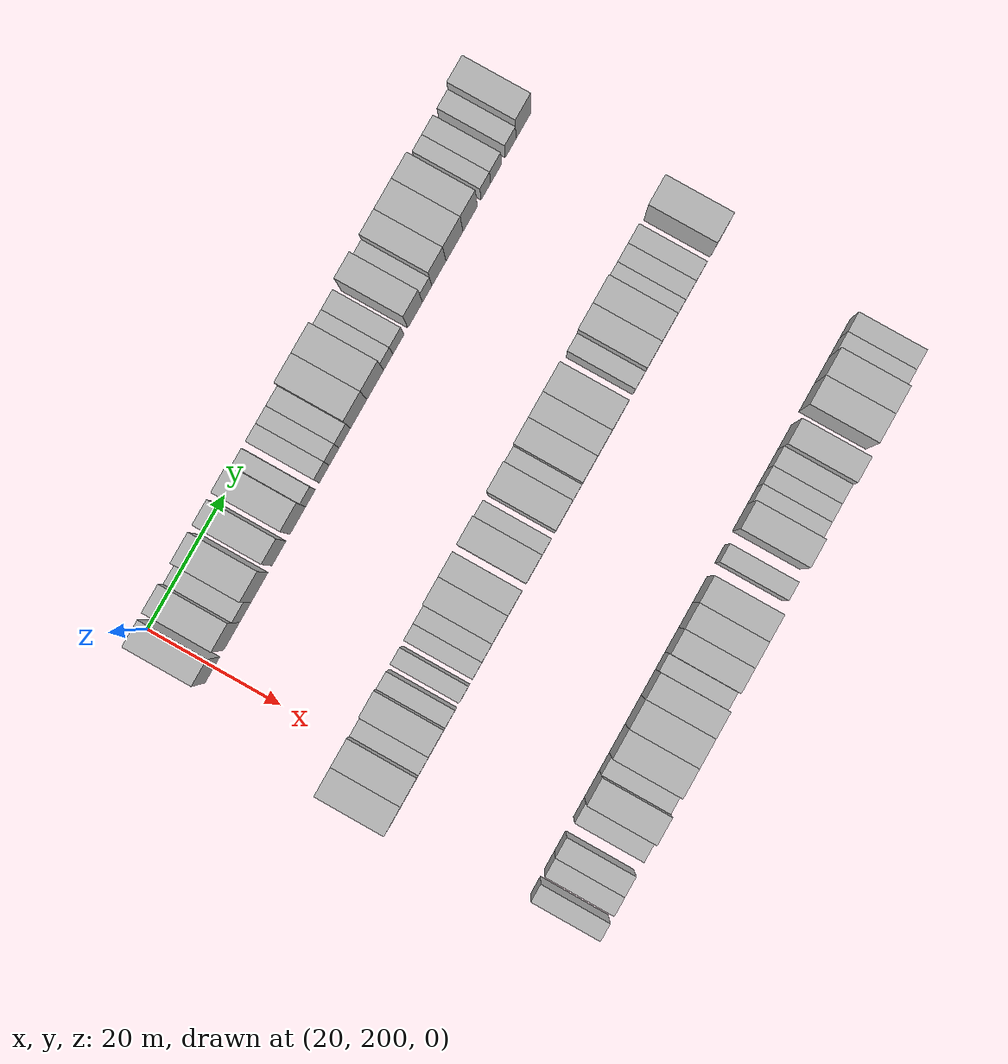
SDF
<sdf version="1.6">
 <world name="default">
  <model name="building_123">
   <static>1</static>
   <pose>25.0000 199.6156 0 0.000000 0.000000 0.000000</pose>
   <link name="link">
    <pose>0 0 4.50 0 0 0</pose>
    <collision name="collision"><geometry><box><size>10.0000 3.8660 9.0000</size></box></geometry></collision>
    <visual name="visual">
     <cast_shadows>0</cast_shadows>
     <geometry><box><size>10.0000 3.8660 9.0000</size></box></geometry>
     <material>
      <script>
       <uri>model://HANNAS_wall/materials/scripts</uri>
       <uri>model://HANNAS_wall/materials/textures</uri>
       <name>vrc/HANNAS_wall</name>
      </script>
     </material>
    </visual>
   </link>
  </model>
  <model name="building_124">
   <static>1</static>
   <pose>25.0000 204.6122 0 0.000000 0.000000 0.000000</pose>
   <link name="link">
    <pose>0 0 4.50 0 0 0</pose>
    <collision name="collision"><geometry><box><size>10.0000 4.1271 9.0000</size></box></geometry></collision>
    <visual name="visual">
     <cast_shadows>0</cast_shadows>
     <geometry><box><size>10.0000 4.1271 9.0000</size></box></geometry>
     <material>
      <script>
       <uri>model://HANNAS_wall/materials/scripts</uri>
       <uri>model://HANNAS_wall/materials/textures</uri>
       <name>vrc/HANNAS_wall</name>
      </script>
     </material>
    </visual>
   </link>
  </model>
  <model name="building_125">
   <static>1</static>
   <pose>25.0000 208.1645 0 0.000000 0.000000 0.000000</pose>
   <link name="link">
    <pose>0 0 3.00 0 0 0</pose>
    <collision name="collision"><geometry><box><size>10.0000 2.9774 6.0000</size></box></geometry></collision>
    <visual name="visual">
     <cast_shadows>0</cast_shadows>
     <geometry><box><size>10.0000 2.9774 6.0000</size></box></geometry>
     <material>
      <script>
       <uri>model://HANNAS_wall/materials/scripts</uri>
       <uri>model://HANNAS_wall/materials/textures</uri>
       <name>vrc/HANNAS_wall</name>
      </script>
     </material>
    </visual>
   </link>
  </model>
  <model name="building_126">
   <static>1</static>
   <pose>25.0000 211.8741 0 0.000000 0.000000 0.000000</pose>
   <link name="link">
    <pose>0 0 4.50 0 0 0</pose>
    <collision name="collision"><geometry><box><size>10.0000 4.4418 9.0000</size></box></geometry></collision>
    <visual name="visual">
     <cast_shadows>0</cast_shadows>
     <geometry><box><size>10.0000 4.4418 9.0000</size></box></geometry>
     <material>
      <script>
       <uri>model://HANNAS_wall/materials/scripts</uri>
       <uri>model://HANNAS_wall/materials/textures</uri>
       <name>vrc/HANNAS_wall</name>
      </script>
     </material>
    </visual>
   </link>
  </model>
  <model name="building_127">
   <static>1</static>
   <pose>25.0000 216.9432 0 0.000000 0.000000 0.000000</pose>
   <link name="link">
    <pose>0 0 4.50 0 0 0</pose>
    <collision name="collision"><geometry><box><size>10.0000 3.6965 9.0000</size></box></geometry></collision>
    <visual name="visual">
     <cast_shadows>0</cast_shadows>
     <geometry><box><size>10.0000 3.6965 9.0000</size></box></geometry>
     <material>
      <script>
       <uri>model://HANNAS_wall/materials/scripts</uri>
       <uri>model://HANNAS_wall/materials/textures</uri>
       <name>vrc/HANNAS_wall</name>
      </script>
     </material>
    </visual>
   </link>
  </model>
  <model name="building_128">
   <static>1</static>
   <pose>25.0000 221.8548 0 0.000000 0.000000 0.000000</pose>
   <link name="link">
    <pose>0 0 4.50 0 0 0</pose>
    <collision name="collision"><geometry><box><size>10.0000 4.1267 9.0000</size></box></geometry></collision>
    <visual name="visual">
     <cast_shadows>0</cast_shadows>
     <geometry><box><size>10.0000 4.1267 9.0000</size></box></geometry>
     <material>
      <script>
       <uri>model://HANNAS_wall/materials/scripts</uri>
       <uri>model://HANNAS_wall/materials/textures</uri>
       <name>vrc/HANNAS_wall</name>
      </script>
     </material>
    </visual>
   </link>
  </model>
  <model name="building_129">
   <static>1</static>
   <pose>25.0000 225.1959 0 0.000000 0.000000 0.000000</pose>
   <link name="link">
    <pose>0 0 3.00 0 0 0</pose>
    <collision name="collision"><geometry><box><size>10.0000 2.5555 6.0000</size></box></geometry></collision>
    <visual name="visual">
     <cast_shadows>0</cast_shadows>
     <geometry><box><size>10.0000 2.5555 6.0000</size></box></geometry>
     <material>
      <script>
       <uri>model://HANNAS_wall/materials/scripts</uri>
       <uri>model://HANNAS_wall/materials/textures</uri>
       <name>vrc/HANNAS_wall</name>
      </script>
     </material>
    </visual>
   </link>
  </model>
  <model name="building_130">
   <static>1</static>
   <pose>25.0000 228.7928 0 0.000000 0.000000 0.000000</pose>
   <link name="link">
    <pose>0 0 3.00 0 0 0</pose>
    <collision name="collision"><geometry><box><size>10.0000 2.6382 6.0000</size></box></geometry></collision>
    <visual name="visual">
     <cast_shadows>0</cast_shadows>
     <geometry><box><size>10.0000 2.6382 6.0000</size></box></geometry>
     <material>
      <script>
       <uri>model://HANNAS_wall/materials/scripts</uri>
       <uri>model://HANNAS_wall/materials/textures</uri>
       <name>vrc/HANNAS_wall</name>
      </script>
     </material>
    </visual>
   </link>
  </model>
  <model name="building_131">
   <static>1</static>
   <pose>25.0000 231.4139 0 0.000000 0.000000 0.000000</pose>
   <link name="link">
    <pose>0 0 3.00 0 0 0</pose>
    <collision name="collision"><geometry><box><size>10.0000 2.6039 6.0000</size></box></geometry></collision>
    <visual name="visual">
     <cast_shadows>0</cast_shadows>
     <geometry><box><size>10.0000 2.6039 6.0000</size></box></geometry>
     <material>
      <script>
       <uri>model://HANNAS_wall/materials/scripts</uri>
       <uri>model://HANNAS_wall/materials/textures</uri>
       <name>vrc/HANNAS_wall</name>
      </script>
     </material>
    </visual>
   </link>
  </model>
  <model name="building_132">
   <static>1</static>
   <pose>25.0000 234.1875 0 0.000000 0.000000 0.000000</pose>
   <link name="link">
    <pose>0 0 3.00 0 0 0</pose>
    <collision name="collision"><geometry><box><size>10.0000 2.9432 6.0000</size></box></geometry></collision>
    <visual name="visual">
     <cast_shadows>0</cast_shadows>
     <geometry><box><size>10.0000 2.9432 6.0000</size></box></geometry>
     <material>
      <script>
       <uri>model://HANNAS_wall/materials/scripts</uri>
       <uri>model://HANNAS_wall/materials/textures</uri>
       <name>vrc/HANNAS_wall</name>
      </script>
     </material>
    </visual>
   </link>
  </model>
  <model name="building_133">
   <static>1</static>
   <pose>25.0000 237.8364 0 0.000000 0.000000 0.000000</pose>
   <link name="link">
    <pose>0 0 4.50 0 0 0</pose>
    <collision name="collision"><geometry><box><size>10.0000 4.3547 9.0000</size></box></geometry></collision>
    <visual name="visual">
     <cast_shadows>0</cast_shadows>
     <geometry><box><size>10.0000 4.3547 9.0000</size></box></geometry>
     <material>
      <script>
       <uri>model://HANNAS_wall/materials/scripts</uri>
       <uri>model://HANNAS_wall/materials/textures</uri>
       <name>vrc/HANNAS_wall</name>
      </script>
     </material>
    </visual>
   </link>
  </model>
  <model name="building_134">
   <static>1</static>
   <pose>25.0000 242.2276 0 0.000000 0.000000 0.000000</pose>
   <link name="link">
    <pose>0 0 4.50 0 0 0</pose>
    <collision name="collision"><geometry><box><size>10.0000 4.4278 9.0000</size></box></geometry></collision>
    <visual name="visual">
     <cast_shadows>0</cast_shadows>
     <geometry><box><size>10.0000 4.4278 9.0000</size></box></geometry>
     <material>
      <script>
       <uri>model://HANNAS_wall/materials/scripts</uri>
       <uri>model://HANNAS_wall/materials/textures</uri>
       <name>vrc/HANNAS_wall</name>
      </script>
     </material>
    </visual>
   </link>
  </model>
  <model name="building_135">
   <static>1</static>
   <pose>25.0000 245.6632 0 0.000000 0.000000 0.000000</pose>
   <link name="link">
    <pose>0 0 3.00 0 0 0</pose>
    <collision name="collision"><geometry><box><size>10.0000 2.4433 6.0000</size></box></geometry></collision>
    <visual name="visual">
     <cast_shadows>0</cast_shadows>
     <geometry><box><size>10.0000 2.4433 6.0000</size></box></geometry>
     <material>
      <script>
       <uri>model://HANNAS_wall/materials/scripts</uri>
       <uri>model://HANNAS_wall/materials/textures</uri>
       <name>vrc/HANNAS_wall</name>
      </script>
     </material>
    </visual>
   </link>
  </model>
  <model name="building_136">
   <static>1</static>
   <pose>25.0000 248.3655 0 0.000000 0.000000 0.000000</pose>
   <link name="link">
    <pose>0 0 3.00 0 0 0</pose>
    <collision name="collision"><geometry><box><size>10.0000 2.9613 6.0000</size></box></geometry></collision>
    <visual name="visual">
     <cast_shadows>0</cast_shadows>
     <geometry><box><size>10.0000 2.9613 6.0000</size></box></geometry>
     <material>
      <script>
       <uri>model://HANNAS_wall/materials/scripts</uri>
       <uri>model://HANNAS_wall/materials/textures</uri>
       <name>vrc/HANNAS_wall</name>
      </script>
     </material>
    </visual>
   </link>
  </model>
  <model name="building_137">
   <static>1</static>
   <pose>25.0000 252.7912 0 0.000000 0.000000 0.000000</pose>
   <link name="link">
    <pose>0 0 4.50 0 0 0</pose>
    <collision name="collision"><geometry><box><size>10.0000 3.8902 9.0000</size></box></geometry></collision>
    <visual name="visual">
     <cast_shadows>0</cast_shadows>
     <geometry><box><size>10.0000 3.8902 9.0000</size></box></geometry>
     <material>
      <script>
       <uri>model://HANNAS_wall/materials/scripts</uri>
       <uri>model://HANNAS_wall/materials/textures</uri>
       <name>vrc/HANNAS_wall</name>
      </script>
     </material>
    </visual>
   </link>
  </model>
  <model name="building_138">
   <static>1</static>
   <pose>25.0000 255.9922 0 0.000000 0.000000 0.000000</pose>
   <link name="link">
    <pose>0 0 3.00 0 0 0</pose>
    <collision name="collision"><geometry><box><size>10.0000 2.5119 6.0000</size></box></geometry></collision>
    <visual name="visual">
     <cast_shadows>0</cast_shadows>
     <geometry><box><size>10.0000 2.5119 6.0000</size></box></geometry>
     <material>
      <script>
       <uri>model://HANNAS_wall/materials/scripts</uri>
       <uri>model://HANNAS_wall/materials/textures</uri>
       <name>vrc/HANNAS_wall</name>
      </script>
     </material>
    </visual>
   </link>
  </model>
  <model name="building_139">
   <static>1</static>
   <pose>25.0000 259.1299 0 0.000000 0.000000 0.000000</pose>
   <link name="link">
    <pose>0 0 4.50 0 0 0</pose>
    <collision name="collision"><geometry><box><size>10.0000 3.7633 9.0000</size></box></geometry></collision>
    <visual name="visual">
     <cast_shadows>0</cast_shadows>
     <geometry><box><size>10.0000 3.7633 9.0000</size></box></geometry>
     <material>
      <script>
       <uri>model://HANNAS_wall/materials/scripts</uri>
       <uri>model://HANNAS_wall/materials/textures</uri>
       <name>vrc/HANNAS_wall</name>
      </script>
     </material>
    </visual>
   </link>
  </model>
  <model name="building_140">
   <static>1</static>
   <pose>25.0000 263.2577 0 0.000000 0.000000 0.000000</pose>
   <link name="link">
    <pose>0 0 4.50 0 0 0</pose>
    <collision name="collision"><geometry><box><size>10.0000 4.4923 9.0000</size></box></geometry></collision>
    <visual name="visual">
     <cast_shadows>0</cast_shadows>
     <geometry><box><size>10.0000 4.4923 9.0000</size></box></geometry>
     <material>
      <script>
       <uri>model://HANNAS_wall/materials/scripts</uri>
       <uri>model://HANNAS_wall/materials/textures</uri>
       <name>vrc/HANNAS_wall</name>
      </script>
     </material>
    </visual>
   </link>
  </model>
  <model name="building_141">
   <static>1</static>
   <pose>25.0000 267.4378 0 0.000000 0.000000 0.000000</pose>
   <link name="link">
    <pose>0 0 4.50 0 0 0</pose>
    <collision name="collision"><geometry><box><size>10.0000 3.8680 9.0000</size></box></geometry></collision>
    <visual name="visual">
     <cast_shadows>0</cast_shadows>
     <geometry><box><size>10.0000 3.8680 9.0000</size></box></geometry>
     <material>
      <script>
       <uri>model://HANNAS_wall/materials/scripts</uri>
       <uri>model://HANNAS_wall/materials/textures</uri>
       <name>vrc/HANNAS_wall</name>
      </script>
     </material>
    </visual>
   </link>
  </model>
  <model name="building_142">
   <static>1</static>
   <pose>25.0000 271.6406 0 0.000000 0.000000 0.000000</pose>
   <link name="link">
    <pose>0 0 3.00 0 0 0</pose>
    <collision name="collision"><geometry><box><size>10.0000 2.5377 6.0000</size></box></geometry></collision>
    <visual name="visual">
     <cast_shadows>0</cast_shadows>
     <geometry><box><size>10.0000 2.5377 6.0000</size></box></geometry>
     <material>
      <script>
       <uri>model://HANNAS_wall/materials/scripts</uri>
       <uri>model://HANNAS_wall/materials/textures</uri>
       <name>vrc/HANNAS_wall</name>
      </script>
     </material>
    </visual>
   </link>
  </model>
  <model name="building_143">
   <static>1</static>
   <pose>25.0000 274.3706 0 0.000000 0.000000 0.000000</pose>
   <link name="link">
    <pose>0 0 3.00 0 0 0</pose>
    <collision name="collision"><geometry><box><size>10.0000 2.9223 6.0000</size></box></geometry></collision>
    <visual name="visual">
     <cast_shadows>0</cast_shadows>
     <geometry><box><size>10.0000 2.9223 6.0000</size></box></geometry>
     <material>
      <script>
       <uri>model://HANNAS_wall/materials/scripts</uri>
       <uri>model://HANNAS_wall/materials/textures</uri>
       <name>vrc/HANNAS_wall</name>
      </script>
     </material>
    </visual>
   </link>
  </model>
  <model name="building_144">
   <static>1</static>
   <pose>25.0000 278.2603 0 0.000000 0.000000 0.000000</pose>
   <link name="link">
    <pose>0 0 3.00 0 0 0</pose>
    <collision name="collision"><geometry><box><size>10.0000 2.8571 6.0000</size></box></geometry></collision>
    <visual name="visual">
     <cast_shadows>0</cast_shadows>
     <geometry><box><size>10.0000 2.8571 6.0000</size></box></geometry>
     <material>
      <script>
       <uri>model://HANNAS_wall/materials/scripts</uri>
       <uri>model://HANNAS_wall/materials/textures</uri>
       <name>vrc/HANNAS_wall</name>
      </script>
     </material>
    </visual>
   </link>
  </model>
  <model name="building_145">
   <static>1</static>
   <pose>25.0000 281.6838 0 0.000000 0.000000 0.000000</pose>
   <link name="link">
    <pose>0 0 4.50 0 0 0</pose>
    <collision name="collision"><geometry><box><size>10.0000 3.9899 9.0000</size></box></geometry></collision>
    <visual name="visual">
     <cast_shadows>0</cast_shadows>
     <geometry><box><size>10.0000 3.9899 9.0000</size></box></geometry>
     <material>
      <script>
       <uri>model://HANNAS_wall/materials/scripts</uri>
       <uri>model://HANNAS_wall/materials/textures</uri>
       <name>vrc/HANNAS_wall</name>
      </script>
     </material>
    </visual>
   </link>
  </model>
  <model name="building_262">
   <static>1</static>
   <pose>55.0000 195.4481 0 0.000000 0.000000 0.000000</pose>
   <link name="link">
    <pose>0 0 4.50 0 0 0</pose>
    <collision name="collision"><geometry><box><size>10.0000 4.1363 9.0000</size></box></geometry></collision>
    <visual name="visual">
     <cast_shadows>0</cast_shadows>
     <geometry><box><size>10.0000 4.1363 9.0000</size></box></geometry>
     <material>
      <script>
       <uri>model://HANNAS_wall/materials/scripts</uri>
       <uri>model://HANNAS_wall/materials/textures</uri>
       <name>vrc/HANNAS_wall</name>
      </script>
     </material>
    </visual>
   </link>
  </model>
  <model name="building_263">
   <static>1</static>
   <pose>55.0000 199.5626 0 0.000000 0.000000 0.000000</pose>
   <link name="link">
    <pose>0 0 4.50 0 0 0</pose>
    <collision name="collision"><geometry><box><size>10.0000 4.0927 9.0000</size></box></geometry></collision>
    <visual name="visual">
     <cast_shadows>0</cast_shadows>
     <geometry><box><size>10.0000 4.0927 9.0000</size></box></geometry>
     <material>
      <script>
       <uri>model://HANNAS_wall/materials/scripts</uri>
       <uri>model://HANNAS_wall/materials/textures</uri>
       <name>vrc/HANNAS_wall</name>
      </script>
     </material>
    </visual>
   </link>
  </model>
  <model name="building_264">
   <static>1</static>
   <pose>55.0000 203.0694 0 0.000000 0.000000 0.000000</pose>
   <link name="link">
    <pose>0 0 3.00 0 0 0</pose>
    <collision name="collision"><geometry><box><size>10.0000 2.9209 6.0000</size></box></geometry></collision>
    <visual name="visual">
     <cast_shadows>0</cast_shadows>
     <geometry><box><size>10.0000 2.9209 6.0000</size></box></geometry>
     <material>
      <script>
       <uri>model://HANNAS_wall/materials/scripts</uri>
       <uri>model://HANNAS_wall/materials/textures</uri>
       <name>vrc/HANNAS_wall</name>
      </script>
     </material>
    </visual>
   </link>
  </model>
  <model name="building_265">
   <static>1</static>
   <pose>55.0000 206.4625 0 0.000000 0.000000 0.000000</pose>
   <link name="link">
    <pose>0 0 4.50 0 0 0</pose>
    <collision name="collision"><geometry><box><size>10.0000 3.8653 9.0000</size></box></geometry></collision>
    <visual name="visual">
     <cast_shadows>0</cast_shadows>
     <geometry><box><size>10.0000 3.8653 9.0000</size></box></geometry>
     <material>
      <script>
       <uri>model://HANNAS_wall/materials/scripts</uri>
       <uri>model://HANNAS_wall/materials/textures</uri>
       <name>vrc/HANNAS_wall</name>
      </script>
     </material>
    </visual>
   </link>
  </model>
  <model name="building_266">
   <static>1</static>
   <pose>55.0000 209.6773 0 0.000000 0.000000 0.000000</pose>
   <link name="link">
    <pose>0 0 3.00 0 0 0</pose>
    <collision name="collision"><geometry><box><size>10.0000 2.5643 6.0000</size></box></geometry></collision>
    <visual name="visual">
     <cast_shadows>0</cast_shadows>
     <geometry><box><size>10.0000 2.5643 6.0000</size></box></geometry>
     <material>
      <script>
       <uri>model://HANNAS_wall/materials/scripts</uri>
       <uri>model://HANNAS_wall/materials/textures</uri>
       <name>vrc/HANNAS_wall</name>
      </script>
     </material>
    </visual>
   </link>
  </model>
  <model name="building_267">
   <static>1</static>
   <pose>55.0000 213.1846 0 0.000000 0.000000 0.000000</pose>
   <link name="link">
    <pose>0 0 3.00 0 0 0</pose>
    <collision name="collision"><geometry><box><size>10.0000 2.4502 6.0000</size></box></geometry></collision>
    <visual name="visual">
     <cast_shadows>0</cast_shadows>
     <geometry><box><size>10.0000 2.4502 6.0000</size></box></geometry>
     <material>
      <script>
       <uri>model://HANNAS_wall/materials/scripts</uri>
       <uri>model://HANNAS_wall/materials/textures</uri>
       <name>vrc/HANNAS_wall</name>
      </script>
     </material>
    </visual>
   </link>
  </model>
  <model name="building_268">
   <static>1</static>
   <pose>55.0000 216.6364 0 0.000000 0.000000 0.000000</pose>
   <link name="link">
    <pose>0 0 3.00 0 0 0</pose>
    <collision name="collision"><geometry><box><size>10.0000 2.4535 6.0000</size></box></geometry></collision>
    <visual name="visual">
     <cast_shadows>0</cast_shadows>
     <geometry><box><size>10.0000 2.4535 6.0000</size></box></geometry>
     <material>
      <script>
       <uri>model://HANNAS_wall/materials/scripts</uri>
       <uri>model://HANNAS_wall/materials/textures</uri>
       <name>vrc/HANNAS_wall</name>
      </script>
     </material>
    </visual>
   </link>
  </model>
  <model name="building_269">
   <static>1</static>
   <pose>55.0000 219.2291 0 0.000000 0.000000 0.000000</pose>
   <link name="link">
    <pose>0 0 3.00 0 0 0</pose>
    <collision name="collision"><geometry><box><size>10.0000 2.7318 6.0000</size></box></geometry></collision>
    <visual name="visual">
     <cast_shadows>0</cast_shadows>
     <geometry><box><size>10.0000 2.7318 6.0000</size></box></geometry>
     <material>
      <script>
       <uri>model://HANNAS_wall/materials/scripts</uri>
       <uri>model://HANNAS_wall/materials/textures</uri>
       <name>vrc/HANNAS_wall</name>
      </script>
     </material>
    </visual>
   </link>
  </model>
  <model name="building_270">
   <static>1</static>
   <pose>55.0000 222.6022 0 0.000000 0.000000 0.000000</pose>
   <link name="link">
    <pose>0 0 4.50 0 0 0</pose>
    <collision name="collision"><geometry><box><size>10.0000 4.0145 9.0000</size></box></geometry></collision>
    <visual name="visual">
     <cast_shadows>0</cast_shadows>
     <geometry><box><size>10.0000 4.0145 9.0000</size></box></geometry>
     <material>
      <script>
       <uri>model://HANNAS_wall/materials/scripts</uri>
       <uri>model://HANNAS_wall/materials/textures</uri>
       <name>vrc/HANNAS_wall</name>
      </script>
     </material>
    </visual>
   </link>
  </model>
  <model name="building_271">
   <static>1</static>
   <pose>55.0000 226.4157 0 0.000000 0.000000 0.000000</pose>
   <link name="link">
    <pose>0 0 4.50 0 0 0</pose>
    <collision name="collision"><geometry><box><size>10.0000 3.6124 9.0000</size></box></geometry></collision>
    <visual name="visual">
     <cast_shadows>0</cast_shadows>
     <geometry><box><size>10.0000 3.6124 9.0000</size></box></geometry>
     <material>
      <script>
       <uri>model://HANNAS_wall/materials/scripts</uri>
       <uri>model://HANNAS_wall/materials/textures</uri>
       <name>vrc/HANNAS_wall</name>
      </script>
     </material>
    </visual>
   </link>
  </model>
  <model name="building_272">
   <static>1</static>
   <pose>55.0000 231.2785 0 0.000000 0.000000 0.000000</pose>
   <link name="link">
    <pose>0 0 4.50 0 0 0</pose>
    <collision name="collision"><geometry><box><size>10.0000 4.1133 9.0000</size></box></geometry></collision>
    <visual name="visual">
     <cast_shadows>0</cast_shadows>
     <geometry><box><size>10.0000 4.1133 9.0000</size></box></geometry>
     <material>
      <script>
       <uri>model://HANNAS_wall/materials/scripts</uri>
       <uri>model://HANNAS_wall/materials/textures</uri>
       <name>vrc/HANNAS_wall</name>
      </script>
     </material>
    </visual>
   </link>
  </model>
  <model name="building_273">
   <static>1</static>
   <pose>55.0000 234.5738 0 0.000000 0.000000 0.000000</pose>
   <link name="link">
    <pose>0 0 3.00 0 0 0</pose>
    <collision name="collision"><geometry><box><size>10.0000 2.4774 6.0000</size></box></geometry></collision>
    <visual name="visual">
     <cast_shadows>0</cast_shadows>
     <geometry><box><size>10.0000 2.4774 6.0000</size></box></geometry>
     <material>
      <script>
       <uri>model://HANNAS_wall/materials/scripts</uri>
       <uri>model://HANNAS_wall/materials/textures</uri>
       <name>vrc/HANNAS_wall</name>
      </script>
     </material>
    </visual>
   </link>
  </model>
  <model name="building_274">
   <static>1</static>
   <pose>55.0000 239.0020 0 0.000000 0.000000 0.000000</pose>
   <link name="link">
    <pose>0 0 4.50 0 0 0</pose>
    <collision name="collision"><geometry><box><size>10.0000 4.3788 9.0000</size></box></geometry></collision>
    <visual name="visual">
     <cast_shadows>0</cast_shadows>
     <geometry><box><size>10.0000 4.3788 9.0000</size></box></geometry>
     <material>
      <script>
       <uri>model://HANNAS_wall/materials/scripts</uri>
       <uri>model://HANNAS_wall/materials/textures</uri>
       <name>vrc/HANNAS_wall</name>
      </script>
     </material>
    </visual>
   </link>
  </model>
  <model name="building_275">
   <static>1</static>
   <pose>55.0000 242.4482 0 0.000000 0.000000 0.000000</pose>
   <link name="link">
    <pose>0 0 3.00 0 0 0</pose>
    <collision name="collision"><geometry><box><size>10.0000 2.5136 6.0000</size></box></geometry></collision>
    <visual name="visual">
     <cast_shadows>0</cast_shadows>
     <geometry><box><size>10.0000 2.5136 6.0000</size></box></geometry>
     <material>
      <script>
       <uri>model://HANNAS_wall/materials/scripts</uri>
       <uri>model://HANNAS_wall/materials/textures</uri>
       <name>vrc/HANNAS_wall</name>
      </script>
     </material>
    </visual>
   </link>
  </model>
  <model name="building_276">
   <static>1</static>
   <pose>55.0000 245.6375 0 0.000000 0.000000 0.000000</pose>
   <link name="link">
    <pose>0 0 4.50 0 0 0</pose>
    <collision name="collision"><geometry><box><size>10.0000 3.8650 9.0000</size></box></geometry></collision>
    <visual name="visual">
     <cast_shadows>0</cast_shadows>
     <geometry><box><size>10.0000 3.8650 9.0000</size></box></geometry>
     <material>
      <script>
       <uri>model://HANNAS_wall/materials/scripts</uri>
       <uri>model://HANNAS_wall/materials/textures</uri>
       <name>vrc/HANNAS_wall</name>
      </script>
     </material>
    </visual>
   </link>
  </model>
  <model name="building_277">
   <static>1</static>
   <pose>55.0000 249.4363 0 0.000000 0.000000 0.000000</pose>
   <link name="link">
    <pose>0 0 4.50 0 0 0</pose>
    <collision name="collision"><geometry><box><size>10.0000 3.7327 9.0000</size></box></geometry></collision>
    <visual name="visual">
     <cast_shadows>0</cast_shadows>
     <geometry><box><size>10.0000 3.7327 9.0000</size></box></geometry>
     <material>
      <script>
       <uri>model://HANNAS_wall/materials/scripts</uri>
       <uri>model://HANNAS_wall/materials/textures</uri>
       <name>vrc/HANNAS_wall</name>
      </script>
     </material>
    </visual>
   </link>
  </model>
  <model name="building_278">
   <static>1</static>
   <pose>55.0000 253.4735 0 0.000000 0.000000 0.000000</pose>
   <link name="link">
    <pose>0 0 4.50 0 0 0</pose>
    <collision name="collision"><geometry><box><size>10.0000 4.3417 9.0000</size></box></geometry></collision>
    <visual name="visual">
     <cast_shadows>0</cast_shadows>
     <geometry><box><size>10.0000 4.3417 9.0000</size></box></geometry>
     <material>
      <script>
       <uri>model://HANNAS_wall/materials/scripts</uri>
       <uri>model://HANNAS_wall/materials/textures</uri>
       <name>vrc/HANNAS_wall</name>
      </script>
     </material>
    </visual>
   </link>
  </model>
  <model name="building_279">
   <static>1</static>
   <pose>55.0000 258.9593 0 0.000000 0.000000 0.000000</pose>
   <link name="link">
    <pose>0 0 3.00 0 0 0</pose>
    <collision name="collision"><geometry><box><size>10.0000 2.6298 6.0000</size></box></geometry></collision>
    <visual name="visual">
     <cast_shadows>0</cast_shadows>
     <geometry><box><size>10.0000 2.6298 6.0000</size></box></geometry>
     <material>
      <script>
       <uri>model://HANNAS_wall/materials/scripts</uri>
       <uri>model://HANNAS_wall/materials/textures</uri>
       <name>vrc/HANNAS_wall</name>
      </script>
     </material>
    </visual>
   </link>
  </model>
  <model name="building_280">
   <static>1</static>
   <pose>55.0000 262.2301 0 0.000000 0.000000 0.000000</pose>
   <link name="link">
    <pose>0 0 4.50 0 0 0</pose>
    <collision name="collision"><geometry><box><size>10.0000 3.9118 9.0000</size></box></geometry></collision>
    <visual name="visual">
     <cast_shadows>0</cast_shadows>
     <geometry><box><size>10.0000 3.9118 9.0000</size></box></geometry>
     <material>
      <script>
       <uri>model://HANNAS_wall/materials/scripts</uri>
       <uri>model://HANNAS_wall/materials/textures</uri>
       <name>vrc/HANNAS_wall</name>
      </script>
     </material>
    </visual>
   </link>
  </model>
  <model name="building_281">
   <static>1</static>
   <pose>55.0000 266.2368 0 0.000000 0.000000 0.000000</pose>
   <link name="link">
    <pose>0 0 4.50 0 0 0</pose>
    <collision name="collision"><geometry><box><size>10.0000 4.1016 9.0000</size></box></geometry></collision>
    <visual name="visual">
     <cast_shadows>0</cast_shadows>
     <geometry><box><size>10.0000 4.1016 9.0000</size></box></geometry>
     <material>
      <script>
       <uri>model://HANNAS_wall/materials/scripts</uri>
       <uri>model://HANNAS_wall/materials/textures</uri>
       <name>vrc/HANNAS_wall</name>
      </script>
     </material>
    </visual>
   </link>
  </model>
  <model name="building_282">
   <static>1</static>
   <pose>55.0000 269.5682 0 0.000000 0.000000 0.000000</pose>
   <link name="link">
    <pose>0 0 3.00 0 0 0</pose>
    <collision name="collision"><geometry><box><size>10.0000 2.5611 6.0000</size></box></geometry></collision>
    <visual name="visual">
     <cast_shadows>0</cast_shadows>
     <geometry><box><size>10.0000 2.5611 6.0000</size></box></geometry>
     <material>
      <script>
       <uri>model://HANNAS_wall/materials/scripts</uri>
       <uri>model://HANNAS_wall/materials/textures</uri>
       <name>vrc/HANNAS_wall</name>
      </script>
     </material>
    </visual>
   </link>
  </model>
  <model name="building_283">
   <static>1</static>
   <pose>55.0000 272.2434 0 0.000000 0.000000 0.000000</pose>
   <link name="link">
    <pose>0 0 3.00 0 0 0</pose>
    <collision name="collision"><geometry><box><size>10.0000 2.7894 6.0000</size></box></geometry></collision>
    <visual name="visual">
     <cast_shadows>0</cast_shadows>
     <geometry><box><size>10.0000 2.7894 6.0000</size></box></geometry>
     <material>
      <script>
       <uri>model://HANNAS_wall/materials/scripts</uri>
       <uri>model://HANNAS_wall/materials/textures</uri>
       <name>vrc/HANNAS_wall</name>
      </script>
     </material>
    </visual>
   </link>
  </model>
  <model name="building_284">
   <static>1</static>
   <pose>55.0000 275.0735 0 0.000000 0.000000 0.000000</pose>
   <link name="link">
    <pose>0 0 3.00 0 0 0</pose>
    <collision name="collision"><geometry><box><size>10.0000 2.8707 6.0000</size></box></geometry></collision>
    <visual name="visual">
     <cast_shadows>0</cast_shadows>
     <geometry><box><size>10.0000 2.8707 6.0000</size></box></geometry>
     <material>
      <script>
       <uri>model://HANNAS_wall/materials/scripts</uri>
       <uri>model://HANNAS_wall/materials/textures</uri>
       <name>vrc/HANNAS_wall</name>
      </script>
     </material>
    </visual>
   </link>
  </model>
  <model name="building_285">
   <static>1</static>
   <pose>55.0000 280.7330 0 0.000000 0.000000 0.000000</pose>
   <link name="link">
    <pose>0 0 4.50 0 0 0</pose>
    <collision name="collision"><geometry><box><size>10.0000 4.4483 9.0000</size></box></geometry></collision>
    <visual name="visual">
     <cast_shadows>0</cast_shadows>
     <geometry><box><size>10.0000 4.4483 9.0000</size></box></geometry>
     <material>
      <script>
       <uri>model://HANNAS_wall/materials/scripts</uri>
       <uri>model://HANNAS_wall/materials/textures</uri>
       <name>vrc/HANNAS_wall</name>
      </script>
     </material>
    </visual>
   </link>
  </model>
  <model name="building_402">
   <static>1</static>
   <pose>85.0000 196.1510 0 0.000000 0.000000 0.000000</pose>
   <link name="link">
    <pose>0 0 3.00 0 0 0</pose>
    <collision name="collision"><geometry><box><size>10.0000 2.5492 6.0000</size></box></geometry></collision>
    <visual name="visual">
     <cast_shadows>0</cast_shadows>
     <geometry><box><size>10.0000 2.5492 6.0000</size></box></geometry>
     <material>
      <script>
       <uri>model://HANNAS_wall/materials/scripts</uri>
       <uri>model://HANNAS_wall/materials/textures</uri>
       <name>vrc/HANNAS_wall</name>
      </script>
     </material>
    </visual>
   </link>
  </model>
  <model name="building_403">
   <static>1</static>
   <pose>85.0000 199.7766 0 0.000000 0.000000 0.000000</pose>
   <link name="link">
    <pose>0 0 3.00 0 0 0</pose>
    <collision name="collision"><geometry><box><size>10.0000 2.7019 6.0000</size></box></geometry></collision>
    <visual name="visual">
     <cast_shadows>0</cast_shadows>
     <geometry><box><size>10.0000 2.7019 6.0000</size></box></geometry>
     <material>
      <script>
       <uri>model://HANNAS_wall/materials/scripts</uri>
       <uri>model://HANNAS_wall/materials/textures</uri>
       <name>vrc/HANNAS_wall</name>
      </script>
     </material>
    </visual>
   </link>
  </model>
  <model name="building_404">
   <static>1</static>
   <pose>85.0000 202.6049 0 0.000000 0.000000 0.000000</pose>
   <link name="link">
    <pose>0 0 3.00 0 0 0</pose>
    <collision name="collision"><geometry><box><size>10.0000 2.9547 6.0000</size></box></geometry></collision>
    <visual name="visual">
     <cast_shadows>0</cast_shadows>
     <geometry><box><size>10.0000 2.9547 6.0000</size></box></geometry>
     <material>
      <script>
       <uri>model://HANNAS_wall/materials/scripts</uri>
       <uri>model://HANNAS_wall/materials/textures</uri>
       <name>vrc/HANNAS_wall</name>
      </script>
     </material>
    </visual>
   </link>
  </model>
  <model name="building_405">
   <static>1</static>
   <pose>85.0000 207.5310 0 0.000000 0.000000 0.000000</pose>
   <link name="link">
    <pose>0 0 3.00 0 0 0</pose>
    <collision name="collision"><geometry><box><size>10.0000 2.8975 6.0000</size></box></geometry></collision>
    <visual name="visual">
     <cast_shadows>0</cast_shadows>
     <geometry><box><size>10.0000 2.8975 6.0000</size></box></geometry>
     <material>
      <script>
       <uri>model://HANNAS_wall/materials/scripts</uri>
       <uri>model://HANNAS_wall/materials/textures</uri>
       <name>vrc/HANNAS_wall</name>
      </script>
     </material>
    </visual>
   </link>
  </model>
  <model name="building_406">
   <static>1</static>
   <pose>85.0000 210.9670 0 0.000000 0.000000 0.000000</pose>
   <link name="link">
    <pose>0 0 4.50 0 0 0</pose>
    <collision name="collision"><geometry><box><size>10.0000 3.9745 9.0000</size></box></geometry></collision>
    <visual name="visual">
     <cast_shadows>0</cast_shadows>
     <geometry><box><size>10.0000 3.9745 9.0000</size></box></geometry>
     <material>
      <script>
       <uri>model://HANNAS_wall/materials/scripts</uri>
       <uri>model://HANNAS_wall/materials/textures</uri>
       <name>vrc/HANNAS_wall</name>
      </script>
     </material>
    </visual>
   </link>
  </model>
  <model name="building_407">
   <static>1</static>
   <pose>85.0000 214.2497 0 0.000000 0.000000 0.000000</pose>
   <link name="link">
    <pose>0 0 3.00 0 0 0</pose>
    <collision name="collision"><geometry><box><size>10.0000 2.5910 6.0000</size></box></geometry></collision>
    <visual name="visual">
     <cast_shadows>0</cast_shadows>
     <geometry><box><size>10.0000 2.5910 6.0000</size></box></geometry>
     <material>
      <script>
       <uri>model://HANNAS_wall/materials/scripts</uri>
       <uri>model://HANNAS_wall/materials/textures</uri>
       <name>vrc/HANNAS_wall</name>
      </script>
     </material>
    </visual>
   </link>
  </model>
  <model name="building_408">
   <static>1</static>
   <pose>85.0000 217.6677 0 0.000000 0.000000 0.000000</pose>
   <link name="link">
    <pose>0 0 4.50 0 0 0</pose>
    <collision name="collision"><geometry><box><size>10.0000 4.2449 9.0000</size></box></geometry></collision>
    <visual name="visual">
     <cast_shadows>0</cast_shadows>
     <geometry><box><size>10.0000 4.2449 9.0000</size></box></geometry>
     <material>
      <script>
       <uri>model://HANNAS_wall/materials/scripts</uri>
       <uri>model://HANNAS_wall/materials/textures</uri>
       <name>vrc/HANNAS_wall</name>
      </script>
     </material>
    </visual>
   </link>
  </model>
  <model name="building_409">
   <static>1</static>
   <pose>85.0000 221.9072 0 0.000000 0.000000 0.000000</pose>
   <link name="link">
    <pose>0 0 4.50 0 0 0</pose>
    <collision name="collision"><geometry><box><size>10.0000 4.2341 9.0000</size></box></geometry></collision>
    <visual name="visual">
     <cast_shadows>0</cast_shadows>
     <geometry><box><size>10.0000 4.2341 9.0000</size></box></geometry>
     <material>
      <script>
       <uri>model://HANNAS_wall/materials/scripts</uri>
       <uri>model://HANNAS_wall/materials/textures</uri>
       <name>vrc/HANNAS_wall</name>
      </script>
     </material>
    </visual>
   </link>
  </model>
  <model name="building_410">
   <static>1</static>
   <pose>85.0000 225.9426 0 0.000000 0.000000 0.000000</pose>
   <link name="link">
    <pose>0 0 4.50 0 0 0</pose>
    <collision name="collision"><geometry><box><size>10.0000 3.8367 9.0000</size></box></geometry></collision>
    <visual name="visual">
     <cast_shadows>0</cast_shadows>
     <geometry><box><size>10.0000 3.8367 9.0000</size></box></geometry>
     <material>
      <script>
       <uri>model://HANNAS_wall/materials/scripts</uri>
       <uri>model://HANNAS_wall/materials/textures</uri>
       <name>vrc/HANNAS_wall</name>
      </script>
     </material>
    </visual>
   </link>
  </model>
  <model name="building_411">
   <static>1</static>
   <pose>85.0000 229.1517 0 0.000000 0.000000 0.000000</pose>
   <link name="link">
    <pose>0 0 3.00 0 0 0</pose>
    <collision name="collision"><geometry><box><size>10.0000 2.5815 6.0000</size></box></geometry></collision>
    <visual name="visual">
     <cast_shadows>0</cast_shadows>
     <geometry><box><size>10.0000 2.5815 6.0000</size></box></geometry>
     <material>
      <script>
       <uri>model://HANNAS_wall/materials/scripts</uri>
       <uri>model://HANNAS_wall/materials/textures</uri>
       <name>vrc/HANNAS_wall</name>
      </script>
     </material>
    </visual>
   </link>
  </model>
  <model name="building_412">
   <static>1</static>
   <pose>85.0000 232.2485 0 0.000000 0.000000 0.000000</pose>
   <link name="link">
    <pose>0 0 4.50 0 0 0</pose>
    <collision name="collision"><geometry><box><size>10.0000 3.6120 9.0000</size></box></geometry></collision>
    <visual name="visual">
     <cast_shadows>0</cast_shadows>
     <geometry><box><size>10.0000 3.6120 9.0000</size></box></geometry>
     <material>
      <script>
       <uri>model://HANNAS_wall/materials/scripts</uri>
       <uri>model://HANNAS_wall/materials/textures</uri>
       <name>vrc/HANNAS_wall</name>
      </script>
     </material>
    </visual>
   </link>
  </model>
  <model name="building_413">
   <static>1</static>
   <pose>85.0000 235.9213 0 0.000000 0.000000 0.000000</pose>
   <link name="link">
    <pose>0 0 4.50 0 0 0</pose>
    <collision name="collision"><geometry><box><size>10.0000 3.7337 9.0000</size></box></geometry></collision>
    <visual name="visual">
     <cast_shadows>0</cast_shadows>
     <geometry><box><size>10.0000 3.7337 9.0000</size></box></geometry>
     <material>
      <script>
       <uri>model://HANNAS_wall/materials/scripts</uri>
       <uri>model://HANNAS_wall/materials/textures</uri>
       <name>vrc/HANNAS_wall</name>
      </script>
     </material>
    </visual>
   </link>
  </model>
  <model name="building_414">
   <static>1</static>
   <pose>85.0000 239.7339 0 0.000000 0.000000 0.000000</pose>
   <link name="link">
    <pose>0 0 4.50 0 0 0</pose>
    <collision name="collision"><geometry><box><size>10.0000 3.8914 9.0000</size></box></geometry></collision>
    <visual name="visual">
     <cast_shadows>0</cast_shadows>
     <geometry><box><size>10.0000 3.8914 9.0000</size></box></geometry>
     <material>
      <script>
       <uri>model://HANNAS_wall/materials/scripts</uri>
       <uri>model://HANNAS_wall/materials/textures</uri>
       <name>vrc/HANNAS_wall</name>
      </script>
     </material>
    </visual>
   </link>
  </model>
  <model name="building_415">
   <static>1</static>
   <pose>85.0000 245.0242 0 0.000000 0.000000 0.000000</pose>
   <link name="link">
    <pose>0 0 3.00 0 0 0</pose>
    <collision name="collision"><geometry><box><size>10.0000 2.6893 6.0000</size></box></geometry></collision>
    <visual name="visual">
     <cast_shadows>0</cast_shadows>
     <geometry><box><size>10.0000 2.6893 6.0000</size></box></geometry>
     <material>
      <script>
       <uri>model://HANNAS_wall/materials/scripts</uri>
       <uri>model://HANNAS_wall/materials/textures</uri>
       <name>vrc/HANNAS_wall</name>
      </script>
     </material>
    </visual>
   </link>
  </model>
  <model name="building_416">
   <static>1</static>
   <pose>85.0000 250.4268 0 0.000000 0.000000 0.000000</pose>
   <link name="link">
    <pose>0 0 4.50 0 0 0</pose>
    <collision name="collision"><geometry><box><size>10.0000 4.1158 9.0000</size></box></geometry></collision>
    <visual name="visual">
     <cast_shadows>0</cast_shadows>
     <geometry><box><size>10.0000 4.1158 9.0000</size></box></geometry>
     <material>
      <script>
       <uri>model://HANNAS_wall/materials/scripts</uri>
       <uri>model://HANNAS_wall/materials/textures</uri>
       <name>vrc/HANNAS_wall</name>
      </script>
     </material>
    </visual>
   </link>
  </model>
  <model name="building_417">
   <static>1</static>
   <pose>85.0000 253.7775 0 0.000000 0.000000 0.000000</pose>
   <link name="link">
    <pose>0 0 3.00 0 0 0</pose>
    <collision name="collision"><geometry><box><size>10.0000 2.5858 6.0000</size></box></geometry></collision>
    <visual name="visual">
     <cast_shadows>0</cast_shadows>
     <geometry><box><size>10.0000 2.5858 6.0000</size></box></geometry>
     <material>
      <script>
       <uri>model://HANNAS_wall/materials/scripts</uri>
       <uri>model://HANNAS_wall/materials/textures</uri>
       <name>vrc/HANNAS_wall</name>
      </script>
     </material>
    </visual>
   </link>
  </model>
  <model name="building_418">
   <static>1</static>
   <pose>85.0000 256.3957 0 0.000000 0.000000 0.000000</pose>
   <link name="link">
    <pose>0 0 3.00 0 0 0</pose>
    <collision name="collision"><geometry><box><size>10.0000 2.6506 6.0000</size></box></geometry></collision>
    <visual name="visual">
     <cast_shadows>0</cast_shadows>
     <geometry><box><size>10.0000 2.6506 6.0000</size></box></geometry>
     <material>
      <script>
       <uri>model://HANNAS_wall/materials/scripts</uri>
       <uri>model://HANNAS_wall/materials/textures</uri>
       <name>vrc/HANNAS_wall</name>
      </script>
     </material>
    </visual>
   </link>
  </model>
  <model name="building_419">
   <static>1</static>
   <pose>85.0000 259.1569 0 0.000000 0.000000 0.000000</pose>
   <link name="link">
    <pose>0 0 3.00 0 0 0</pose>
    <collision name="collision"><geometry><box><size>10.0000 2.8717 6.0000</size></box></geometry></collision>
    <visual name="visual">
     <cast_shadows>0</cast_shadows>
     <geometry><box><size>10.0000 2.8717 6.0000</size></box></geometry>
     <material>
      <script>
       <uri>model://HANNAS_wall/materials/scripts</uri>
       <uri>model://HANNAS_wall/materials/textures</uri>
       <name>vrc/HANNAS_wall</name>
      </script>
     </material>
    </visual>
   </link>
  </model>
  <model name="building_420">
   <static>1</static>
   <pose>85.0000 262.4599 0 0.000000 0.000000 0.000000</pose>
   <link name="link">
    <pose>0 0 4.50 0 0 0</pose>
    <collision name="collision"><geometry><box><size>10.0000 3.7342 9.0000</size></box></geometry></collision>
    <visual name="visual">
     <cast_shadows>0</cast_shadows>
     <geometry><box><size>10.0000 3.7342 9.0000</size></box></geometry>
     <material>
      <script>
       <uri>model://HANNAS_wall/materials/scripts</uri>
       <uri>model://HANNAS_wall/materials/textures</uri>
       <name>vrc/HANNAS_wall</name>
      </script>
     </material>
    </visual>
   </link>
  </model>
  <model name="building_421">
   <static>1</static>
   <pose>85.0000 268.4454 0 0.000000 0.000000 0.000000</pose>
   <link name="link">
    <pose>0 0 4.50 0 0 0</pose>
    <collision name="collision"><geometry><box><size>10.0000 4.2369 9.0000</size></box></geometry></collision>
    <visual name="visual">
     <cast_shadows>0</cast_shadows>
     <geometry><box><size>10.0000 4.2369 9.0000</size></box></geometry>
     <material>
      <script>
       <uri>model://HANNAS_wall/materials/scripts</uri>
       <uri>model://HANNAS_wall/materials/textures</uri>
       <name>vrc/HANNAS_wall</name>
      </script>
     </material>
    </visual>
   </link>
  </model>
  <model name="building_422">
   <static>1</static>
   <pose>85.0000 272.5715 0 0.000000 0.000000 0.000000</pose>
   <link name="link">
    <pose>0 0 4.50 0 0 0</pose>
    <collision name="collision"><geometry><box><size>10.0000 4.0152 9.0000</size></box></geometry></collision>
    <visual name="visual">
     <cast_shadows>0</cast_shadows>
     <geometry><box><size>10.0000 4.0152 9.0000</size></box></geometry>
     <material>
      <script>
       <uri>model://HANNAS_wall/materials/scripts</uri>
       <uri>model://HANNAS_wall/materials/textures</uri>
       <name>vrc/HANNAS_wall</name>
      </script>
     </material>
    </visual>
   </link>
  </model>
  <model name="building_423">
   <static>1</static>
   <pose>85.0000 276.0038 0 0.000000 0.000000 0.000000</pose>
   <link name="link">
    <pose>0 0 3.00 0 0 0</pose>
    <collision name="collision"><geometry><box><size>10.0000 2.8494 6.0000</size></box></geometry></collision>
    <visual name="visual">
     <cast_shadows>0</cast_shadows>
     <geometry><box><size>10.0000 2.8494 6.0000</size></box></geometry>
     <material>
      <script>
       <uri>model://HANNAS_wall/materials/scripts</uri>
       <uri>model://HANNAS_wall/materials/textures</uri>
       <name>vrc/HANNAS_wall</name>
      </script>
     </material>
    </visual>
   </link>
  </model>
  <model name="building_424">
   <static>1</static>
   <pose>85.0000 278.8788 0 0.000000 0.000000 0.000000</pose>
   <link name="link">
    <pose>0 0 3.00 0 0 0</pose>
    <collision name="collision"><geometry><box><size>10.0000 2.9005 6.0000</size></box></geometry></collision>
    <visual name="visual">
     <cast_shadows>0</cast_shadows>
     <geometry><box><size>10.0000 2.9005 6.0000</size></box></geometry>
     <material>
      <script>
       <uri>model://HANNAS_wall/materials/scripts</uri>
       <uri>model://HANNAS_wall/materials/textures</uri>
       <name>vrc/HANNAS_wall</name>
      </script>
     </material>
    </visual>
   </link>
  </model>
 </world>
</sdf>
